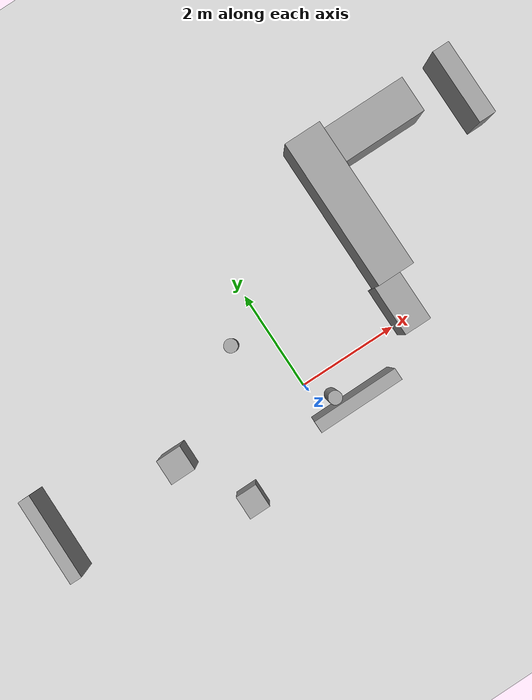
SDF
<sdf version="1.6">
 <world name="default">
  <model name="ground_plane">
   <static>1</static>
   <link name="link">
    <collision name="collision">
     <geometry><plane><normal>0 0 1</normal><size>100 100</size></plane></geometry>
     <surface><friction><ode><mu>100</mu><mu2>50</mu2></ode></friction></surface>
    </collision>
    <visual name="visual">
     <cast_shadows>0</cast_shadows>
     <geometry><plane><normal>0 0 1</normal><size>100 100</size></plane></geometry>
     <material>
      <script><uri>file://media/materials/scripts/gazebo.material</uri><name>Gazebo/Grey</name></script>
     </material>
    </visual>
   </link>
  </model>
  <model name="cma_armario">
   <link name="link_0">
    <pose>1.32157 0.885178 0.5 0 -0 0</pose>
    <inertial>
     <mass>0.402376</mass>
     <inertia>
      <ixx>0.0353686</ixx>
      <ixy>0</ixy>
      <ixz>0</ixz>
      <iyy>0.132616</iyy>
      <iyz>0</iyz>
      <izz>0.100922</izz>
     </inertia>
    </inertial>
    <visual name="visual">
     <geometry><box><size>1.71877 0.234069 1</size></box></geometry>
     <material>
      <lighting>1</lighting>
      <script><uri>file://media/materials/scripts/gazebo.material</uri><name>Gazebo/Grey</name></script>
      <ambient>0.3 0.3 0.3 1</ambient>
      <diffuse>0.7 0.7 0.7 1</diffuse>
      <specular>0.01 0.01 0.01 1</specular>
      <emissive>0 0 0 1</emissive>
     </material>
    </visual>
    <collision name="collision">
     <geometry><box><size>1.71877 0.234069 1</size></box></geometry>
     <surface>
      <friction>
       <ode><mu>1</mu><mu2>1</mu2><fdir1>0 0 0</fdir1><slip1>0</slip1><slip2>0</slip2></ode>
       <torsional>
        <coefficient>1</coefficient>
        <patch_radius>0</patch_radius>
        <surface_radius>0</surface_radius>
        <use_patch_radius>1</use_patch_radius>
        <ode><slip>0</slip></ode>
       </torsional>
      </friction>
      <bounce><restitution_coefficient>0</restitution_coefficient><threshold>1e+06</threshold></bounce>
      <contact>
       <collide_without_contact>0</collide_without_contact>
       <collide_without_contact_bitmask>1</collide_without_contact_bitmask>
       <collide_bitmask>1</collide_bitmask>
       <ode>
        <soft_cfm>0</soft_cfm>
        <soft_erp>0.2</soft_erp>
        <kp>1e+13</kp>
        <kd>1</kd>
        <max_vel>0.01</max_vel>
        <min_depth>0</min_depth>
       </ode>
       <bullet>
        <split_impulse>1</split_impulse>
        <split_impulse_penetration_threshold>-0.01</split_impulse_penetration_threshold>
        <soft_cfm>0</soft_cfm>
        <soft_erp>0.2</soft_erp>
        <kp>1e+13</kp>
        <kd>1</kd>
       </bullet>
      </contact>
     </surface>
    </collision>
   </link>
   <static>0</static>
   <pose>-0.669335 -1.58272 0 0 -0 0.001296</pose>
  </model>
  <model name="cma_lixo">
   <link name="link_1">
    <pose>0.882962 1.81586 0.5 0 -0 0</pose>
    <inertial>
     <mass>0.0687644</mass>
     <inertia>
      <ixx>0.00602588</ixx>
      <ixy>0</ixy>
      <ixz>0</ixz>
      <iyy>0.00602588</iyy>
      <iyz>0</iyz>
      <izz>0.000591068</izz>
     </inertia>
    </inertial>
    <visual name="visual">
     <geometry><cylinder><radius>0.131112</radius><length>1</length></cylinder></geometry>
     <material>
      <lighting>1</lighting>
      <script><uri>file://media/materials/scripts/gazebo.material</uri><name>Gazebo/Grey</name></script>
      <ambient>0.3 0.3 0.3 1</ambient>
      <diffuse>0.7 0.7 0.7 1</diffuse>
      <specular>0.01 0.01 0.01 1</specular>
      <emissive>0 0 0 1</emissive>
     </material>
    </visual>
    <collision name="collision">
     <geometry><cylinder><radius>0.131112</radius><length>1</length></cylinder></geometry>
     <surface>
      <friction>
       <ode><mu>1</mu><mu2>1</mu2><fdir1>0 0 0</fdir1><slip1>0</slip1><slip2>0</slip2></ode>
       <torsional>
        <coefficient>1</coefficient>
        <patch_radius>0</patch_radius>
        <surface_radius>0</surface_radius>
        <use_patch_radius>1</use_patch_radius>
        <ode><slip>0</slip></ode>
       </torsional>
      </friction>
      <bounce><restitution_coefficient>0</restitution_coefficient><threshold>1e+06</threshold></bounce>
      <contact>
       <collide_without_contact>0</collide_without_contact>
       <collide_without_contact_bitmask>1</collide_without_contact_bitmask>
       <collide_bitmask>1</collide_bitmask>
       <ode>
        <soft_cfm>0</soft_cfm>
        <soft_erp>0.2</soft_erp>
        <kp>1e+13</kp>
        <kd>1</kd>
        <max_vel>0.01</max_vel>
        <min_depth>0</min_depth>
       </ode>
       <bullet>
        <split_impulse>1</split_impulse>
        <split_impulse_penetration_threshold>-0.01</split_impulse_penetration_threshold>
        <soft_cfm>0</soft_cfm>
        <soft_erp>0.2</soft_erp>
        <kp>1e+13</kp>
        <kd>1</kd>
       </bullet>
      </contact>
     </surface>
    </collision>
   </link>
   <static>0</static>
   <pose>-1.35785 -1.52544 -5e-06 0 0 -0.543097</pose>
  </model>
  <model name="cma_lixo_0">
   <link name="link_1">
    <pose>0.882962 1.81586 0.5 0 -0 0</pose>
    <inertial>
     <mass>0.0687644</mass>
     <inertia>
      <ixx>0.00602588</ixx>
      <ixy>0</ixy>
      <ixz>0</ixz>
      <iyy>0.00602588</iyy>
      <iyz>0</iyz>
      <izz>0.000591068</izz>
     </inertia>
    </inertial>
    <visual name="visual">
     <geometry><cylinder><radius>0.131112</radius><length>1</length></cylinder></geometry>
     <material>
      <lighting>1</lighting>
      <script><uri>file://media/materials/scripts/gazebo.material</uri><name>Gazebo/Grey</name></script>
      <ambient>0.3 0.3 0.3 1</ambient>
      <diffuse>0.7 0.7 0.7 1</diffuse>
      <specular>0.01 0.01 0.01 1</specular>
      <emissive>0 0 0 1</emissive>
     </material>
    </visual>
    <collision name="collision">
     <geometry><cylinder><radius>0.131112</radius><length>1</length></cylinder></geometry>
     <surface>
      <friction>
       <ode><mu>1</mu><mu2>1</mu2><fdir1>0 0 0</fdir1><slip1>0</slip1><slip2>0</slip2></ode>
       <torsional>
        <coefficient>1</coefficient>
        <patch_radius>0</patch_radius>
        <surface_radius>0</surface_radius>
        <use_patch_radius>1</use_patch_radius>
        <ode><slip>0</slip></ode>
       </torsional>
      </friction>
      <bounce><restitution_coefficient>0</restitution_coefficient><threshold>1e+06</threshold></bounce>
      <contact>
       <collide_without_contact>0</collide_without_contact>
       <collide_without_contact_bitmask>1</collide_without_contact_bitmask>
       <collide_bitmask>1</collide_bitmask>
       <ode>
        <soft_cfm>0</soft_cfm>
        <soft_erp>0.2</soft_erp>
        <kp>1e+13</kp>
        <kd>1</kd>
        <max_vel>0.01</max_vel>
        <min_depth>0</min_depth>
       </ode>
       <bullet>
        <split_impulse>1</split_impulse>
        <split_impulse_penetration_threshold>-0.01</split_impulse_penetration_threshold>
        <soft_cfm>0</soft_cfm>
        <soft_erp>0.2</soft_erp>
        <kp>1e+13</kp>
        <kd>1</kd>
       </bullet>
      </contact>
     </surface>
    </collision>
   </link>
   <static>0</static>
   <pose>-1.60935 -0.442731 -1e-06 0 0 -0.009777</pose>
  </model>
  <model name="cma_bau_s">
   <link name="link_1">
    <pose>0.109594 0.272293 0 0 -0 0</pose>
    <inertial>
     <mass>0.125479</mass>
     <inertia>
      <ixx>0.00641943</ixx>
      <ixy>0</ixy>
      <ixz>0</ixz>
      <iyy>0.0059754</iyy>
      <iyz>0</iyz>
      <izz>0.00422085</izz>
     </inertia>
    </inertial>
    <visual name="visual">
     <geometry><box><size>0.424964 0.472283 0.625118</size></box></geometry>
     <material>
      <lighting>1</lighting>
      <script><uri>file://media/materials/scripts/gazebo.material</uri><name>Gazebo/Grey</name></script>
      <ambient>0.3 0.3 0.3 1</ambient>
      <diffuse>0.7 0.7 0.7 1</diffuse>
      <specular>0.01 0.01 0.01 1</specular>
      <emissive>0 0 0 1</emissive>
     </material>
    </visual>
    <collision name="collision">
     <geometry><box><size>0.424964 0.472283 0.625118</size></box></geometry>
     <surface>
      <friction>
       <ode><mu>1</mu><mu2>1</mu2><fdir1>0 0 0</fdir1><slip1>0</slip1><slip2>0</slip2></ode>
       <torsional>
        <coefficient>1</coefficient>
        <patch_radius>0</patch_radius>
        <surface_radius>0</surface_radius>
        <use_patch_radius>1</use_patch_radius>
        <ode><slip>0</slip></ode>
       </torsional>
      </friction>
      <bounce><restitution_coefficient>0</restitution_coefficient><threshold>1e+06</threshold></bounce>
      <contact>
       <collide_without_contact>0</collide_without_contact>
       <collide_without_contact_bitmask>1</collide_without_contact_bitmask>
       <collide_bitmask>1</collide_bitmask>
       <ode>
        <soft_cfm>0</soft_cfm>
        <soft_erp>0.2</soft_erp>
        <kp>1e+13</kp>
        <kd>1</kd>
        <max_vel>0.01</max_vel>
        <min_depth>0</min_depth>
       </ode>
       <bullet>
        <split_impulse>1</split_impulse>
        <split_impulse_penetration_threshold>-0.01</split_impulse_penetration_threshold>
        <soft_cfm>0</soft_cfm>
        <soft_erp>0.2</soft_erp>
        <kp>1e+13</kp>
        <kd>1</kd>
       </bullet>
      </contact>
     </surface>
    </collision>
   </link>
   <static>0</static>
   <pose>-2.04294 -1.48569 0.312553 1.3e-05 -3e-06 0.000133</pose>
  </model>
  <model name="cma_gaveteiro_1">
   <link name="link_0">
    <pose>-0 4e-06 0 0 -0 0</pose>
    <inertial>
     <mass>0.245086</mass>
     <inertia>
      <ixx>0.025418</ixx>
      <ixy>0</ixy>
      <ixz>0</ixz>
      <iyy>0.0254411</iyy>
      <iyz>0</iyz>
      <izz>0.0100113</izz>
     </inertia>
    </inertial>
    <visual name="visual">
     <geometry><box><size>0.495657 0.494491 1</size></box></geometry>
     <material>
      <lighting>1</lighting>
      <script><uri>file://media/materials/scripts/gazebo.material</uri><name>Gazebo/Grey</name></script>
      <ambient>0.3 0.3 0.3 1</ambient>
      <diffuse>0.7 0.7 0.7 1</diffuse>
      <specular>0.01 0.01 0.01 1</specular>
      <emissive>0 0 0 1</emissive>
     </material>
    </visual>
    <collision name="collision">
     <geometry><box><size>0.495657 0.494491 1</size></box></geometry>
     <surface>
      <friction>
       <ode><mu>1</mu><mu2>1</mu2><fdir1>0 0 0</fdir1><slip1>0</slip1><slip2>0</slip2></ode>
       <torsional>
        <coefficient>1</coefficient>
        <patch_radius>0</patch_radius>
        <surface_radius>0</surface_radius>
        <use_patch_radius>1</use_patch_radius>
        <ode><slip>0</slip></ode>
       </torsional>
      </friction>
      <bounce><restitution_coefficient>0</restitution_coefficient><threshold>1e+06</threshold></bounce>
      <contact>
       <collide_without_contact>0</collide_without_contact>
       <collide_without_contact_bitmask>1</collide_without_contact_bitmask>
       <collide_bitmask>1</collide_bitmask>
       <ode>
        <soft_cfm>0</soft_cfm>
        <soft_erp>0.2</soft_erp>
        <kp>1e+13</kp>
        <kd>1</kd>
        <max_vel>0.01</max_vel>
        <min_depth>0</min_depth>
       </ode>
       <bullet>
        <split_impulse>1</split_impulse>
        <split_impulse_penetration_threshold>-0.01</split_impulse_penetration_threshold>
        <soft_cfm>0</soft_cfm>
        <soft_erp>0.2</soft_erp>
        <kp>1e+13</kp>
        <kd>1</kd>
       </bullet>
      </contact>
     </surface>
    </collision>
   </link>
   <static>0</static>
   <pose>-2.68859 0.131625 0.500001 1e-06 -1e-06 -0.000152</pose>
  </model>
  <model name="cma_armario_7">
   <link name="link_0">
    <pose>1.32157 0.885178 0.5 0 -0 0</pose>
    <inertial>
     <mass>0.402376</mass>
     <inertia>
      <ixx>0.0353686</ixx>
      <ixy>0</ixy>
      <ixz>0</ixz>
      <iyy>0.132616</iyy>
      <iyz>0</iyz>
      <izz>0.100922</izz>
     </inertia>
    </inertial>
    <visual name="visual">
     <geometry><box><size>1.71877 0.234069 1</size></box></geometry>
     <material>
      <lighting>1</lighting>
      <script><uri>file://media/materials/scripts/gazebo.material</uri><name>Gazebo/Grey</name></script>
      <ambient>0.3 0.3 0.3 1</ambient>
      <diffuse>0.7 0.7 0.7 1</diffuse>
      <specular>0.01 0.01 0.01 1</specular>
      <emissive>0 0 0 1</emissive>
     </material>
    </visual>
    <collision name="collision">
     <geometry><box><size>1.71877 0.234069 1</size></box></geometry>
     <surface>
      <friction>
       <ode><mu>1</mu><mu2>1</mu2><fdir1>0 0 0</fdir1><slip1>0</slip1><slip2>0</slip2></ode>
       <torsional>
        <coefficient>1</coefficient>
        <patch_radius>0</patch_radius>
        <surface_radius>0</surface_radius>
        <use_patch_radius>1</use_patch_radius>
        <ode><slip>0</slip></ode>
       </torsional>
      </friction>
      <bounce><restitution_coefficient>0</restitution_coefficient><threshold>1e+06</threshold></bounce>
      <contact>
       <collide_without_contact>0</collide_without_contact>
       <collide_without_contact_bitmask>1</collide_without_contact_bitmask>
       <collide_bitmask>1</collide_bitmask>
       <ode>
        <soft_cfm>0</soft_cfm>
        <soft_erp>0.2</soft_erp>
        <kp>1e+13</kp>
        <kd>1</kd>
        <max_vel>0.01</max_vel>
        <min_depth>0</min_depth>
       </ode>
       <bullet>
        <split_impulse>1</split_impulse>
        <split_impulse_penetration_threshold>-0.01</split_impulse_penetration_threshold>
        <soft_cfm>0</soft_cfm>
        <soft_erp>0.2</soft_erp>
        <kp>1e+13</kp>
        <kd>1</kd>
       </bullet>
      </contact>
     </surface>
    </collision>
   </link>
   <static>0</static>
   <pose>-4.38573 -1.06551 0 0 -0 1.5687</pose>
  </model>
  <model name="cma_armario_coz_190x70cm">
   <link name="link_0">
    <pose>5.20958 2.97661 0.5 0 0 -1.57068</pose>
    <inertial>
     <mass>1.2966</mass>
     <inertia>
      <ixx>0.454477</ixx>
      <ixy>0</ixy>
      <ixz>0</ixz>
      <iyy>0.164706</iyy>
      <iyz>0</iyz>
      <izz>0.403084</izz>
     </inertia>
    </inertial>
    <visual name="visual">
     <geometry><box><size>0.724184 1.79058 1</size></box></geometry>
     <material>
      <lighting>1</lighting>
      <script><uri>file://media/materials/scripts/gazebo.material</uri><name>Gazebo/Grey</name></script>
      <ambient>0.3 0.3 0.3 1</ambient>
      <diffuse>0.7 0.7 0.7 1</diffuse>
      <specular>0.01 0.01 0.01 1</specular>
      <emissive>0 0 0 1</emissive>
     </material>
    </visual>
    <collision name="collision">
     <geometry><box><size>0.724184 1.79058 1</size></box></geometry>
     <surface>
      <friction>
       <ode><mu>1</mu><mu2>1</mu2><fdir1>0 0 0</fdir1><slip1>0</slip1><slip2>0</slip2></ode>
       <torsional>
        <coefficient>1</coefficient>
        <patch_radius>0</patch_radius>
        <surface_radius>0</surface_radius>
        <use_patch_radius>1</use_patch_radius>
        <ode><slip>0</slip></ode>
       </torsional>
      </friction>
      <bounce><restitution_coefficient>0</restitution_coefficient><threshold>1e+06</threshold></bounce>
      <contact>
       <collide_without_contact>0</collide_without_contact>
       <collide_without_contact_bitmask>1</collide_without_contact_bitmask>
       <collide_bitmask>1</collide_bitmask>
       <ode>
        <soft_cfm>0</soft_cfm>
        <soft_erp>0.2</soft_erp>
        <kp>1e+13</kp>
        <kd>1</kd>
        <max_vel>0.01</max_vel>
        <min_depth>0</min_depth>
       </ode>
       <bullet>
        <split_impulse>1</split_impulse>
        <split_impulse_penetration_threshold>-0.01</split_impulse_penetration_threshold>
        <soft_cfm>0</soft_cfm>
        <soft_erp>0.2</soft_erp>
        <kp>1e+13</kp>
        <kd>1</kd>
       </bullet>
      </contact>
     </surface>
    </collision>
   </link>
   <model name="cma_armario_coz_100x50cm">
    <link name="link_0">
     <pose>-3e-06 -3e-06 0 0 -0 0</pose>
     <inertial>
      <mass>0.536193</mass>
      <inertia>
       <ixx>0.0893657</ixx>
       <ixy>0</ixy>
       <ixz>0</ixz>
       <iyy>0.0575293</iyy>
       <iyz>0</iyz>
       <izz>0.0575293</izz>
      </inertia>
     </inertial>
     <visual name="visual">
      <geometry><box><size>0.536193 1 1</size></box></geometry>
      <material>
       <lighting>1</lighting>
       <script><uri>file://media/materials/scripts/gazebo.material</uri><name>Gazebo/Grey</name></script>
       <ambient>0.3 0.3 0.3 1</ambient>
       <diffuse>0.7 0.7 0.7 1</diffuse>
       <specular>0.01 0.01 0.01 1</specular>
       <emissive>0 0 0 1</emissive>
      </material>
     </visual>
     <collision name="collision">
      <geometry><box><size>0.536193 1 1</size></box></geometry>
      <surface>
       <friction>
        <ode><mu>1</mu><mu2>1</mu2><fdir1>0 0 0</fdir1><slip1>0</slip1><slip2>0</slip2></ode>
        <torsional>
         <coefficient>1</coefficient>
         <patch_radius>0</patch_radius>
         <surface_radius>0</surface_radius>
         <use_patch_radius>1</use_patch_radius>
         <ode><slip>0</slip></ode>
        </torsional>
       </friction>
       <bounce><restitution_coefficient>0</restitution_coefficient><threshold>1e+06</threshold></bounce>
       <contact>
        <collide_without_contact>0</collide_without_contact>
        <collide_without_contact_bitmask>1</collide_without_contact_bitmask>
        <collide_bitmask>1</collide_bitmask>
        <ode>
         <soft_cfm>0</soft_cfm>
         <soft_erp>0.2</soft_erp>
         <kp>1e+13</kp>
         <kd>1</kd>
         <max_vel>0.01</max_vel>
         <min_depth>0</min_depth>
        </ode>
        <bullet>
         <split_impulse>1</split_impulse>
         <split_impulse_penetration_threshold>-0.01</split_impulse_penetration_threshold>
         <soft_cfm>0</soft_cfm>
         <soft_erp>0.2</soft_erp>
         <kp>1e+13</kp>
         <kd>1</kd>
        </bullet>
       </contact>
      </surface>
     </collision>
    </link>
    <static>0</static>
    <pose>3.86455 -0.048915 0.5 0 -0 0</pose>
   </model>
   <model name="cma_armario_coz_300x70cm">
    <link name="link_0">
     <pose>3.26428 1.50856 0.5 0 -0 0</pose>
     <inertial>
      <mass>2.13833</mass>
      <inertia><ixx>1.732</ixx><ixy>0</ixy><ixz>0</ixz><iyy>0.271637</iyy><iyz>0</iyz><izz>1.64725</izz></inertia>
     </inertial>
     <visual name="visual">
      <geometry><box><size>0.724184 2.9529 1</size></box></geometry>
      <material>
       <lighting>1</lighting>
       <script><uri>file://media/materials/scripts/gazebo.material</uri><name>Gazebo/Grey</name></script>
       <ambient>0.3 0.3 0.3 1</ambient>
       <diffuse>0.7 0.7 0.7 1</diffuse>
       <specular>0.01 0.01 0.01 1</specular>
       <emissive>0 0 0 1</emissive>
      </material>
     </visual>
     <collision name="collision">
      <geometry><box><size>0.724184 2.9529 1</size></box></geometry>
      <surface>
       <friction>
        <ode><mu>1</mu><mu2>1</mu2><fdir1>0 0 0</fdir1><slip1>0</slip1><slip2>0</slip2></ode>
        <torsional>
         <coefficient>1</coefficient>
         <patch_radius>0</patch_radius>
         <surface_radius>0</surface_radius>
         <use_patch_radius>1</use_patch_radius>
         <ode><slip>0</slip></ode>
        </torsional>
       </friction>
       <bounce><restitution_coefficient>0</restitution_coefficient><threshold>1e+06</threshold></bounce>
       <contact>
        <collide_without_contact>0</collide_without_contact>
        <collide_without_contact_bitmask>1</collide_without_contact_bitmask>
        <collide_bitmask>1</collide_bitmask>
        <ode>
         <soft_cfm>0</soft_cfm>
         <soft_erp>0.2</soft_erp>
         <kp>1e+13</kp>
         <kd>1</kd>
         <max_vel>0.01</max_vel>
         <min_depth>0</min_depth>
        </ode>
        <bullet>
         <split_impulse>1</split_impulse>
         <split_impulse_penetration_threshold>-0.01</split_impulse_penetration_threshold>
         <soft_cfm>0</soft_cfm>
         <soft_erp>0.2</soft_erp>
         <kp>1e+13</kp>
         <kd>1</kd>
        </bullet>
       </contact>
      </surface>
     </collision>
    </link>
    <static>0</static>
    <pose>0.706289 0.418831 0.5 0 -0 0</pose>
   </model>
   <static>0</static>
   <pose>-1.5961 0.363887 0 0 -0 0</pose>
  </model>
  <model name="cma_armario_coz_150x20cm">
   <link name="link_1">
    <pose>7.18686 2.75247 0.5 0 -0 0</pose>
    <inertial>
     <mass>0.531573</mass>
     <inertia>
      <ixx>0.147651</ixx>
      <ixy>0</ixy>
      <ixz>0</ixz>
      <iyy>0.0496628</iyy>
      <iyz>0</iyz>
      <izz>0.108718</izz>
     </inertia>
    </inertial>
    <visual name="visual">
     <geometry><box><size>0.348023 1.52746 1</size></box></geometry>
     <material>
      <lighting>1</lighting>
      <script><uri>file://media/materials/scripts/gazebo.material</uri><name>Gazebo/Grey</name></script>
      <ambient>0.3 0.3 0.3 1</ambient>
      <diffuse>0.7 0.7 0.7 1</diffuse>
      <specular>0.01 0.01 0.01 1</specular>
      <emissive>0 0 0 1</emissive>
     </material>
    </visual>
    <collision name="collision">
     <geometry><box><size>0.348023 1.52746 1</size></box></geometry>
     <surface>
      <friction>
       <ode><mu>1</mu><mu2>1</mu2><fdir1>0 0 0</fdir1><slip1>0</slip1><slip2>0</slip2></ode>
       <torsional>
        <coefficient>1</coefficient>
        <patch_radius>0</patch_radius>
        <surface_radius>0</surface_radius>
        <use_patch_radius>1</use_patch_radius>
        <ode><slip>0</slip></ode>
       </torsional>
      </friction>
      <bounce><restitution_coefficient>0</restitution_coefficient><threshold>1e+06</threshold></bounce>
      <contact>
       <collide_without_contact>0</collide_without_contact>
       <collide_without_contact_bitmask>1</collide_without_contact_bitmask>
       <collide_bitmask>1</collide_bitmask>
       <ode>
        <soft_cfm>0</soft_cfm>
        <soft_erp>0.2</soft_erp>
        <kp>1e+13</kp>
        <kd>1</kd>
        <max_vel>0.01</max_vel>
        <min_depth>0</min_depth>
       </ode>
       <bullet>
        <split_impulse>1</split_impulse>
        <split_impulse_penetration_threshold>-0.01</split_impulse_penetration_threshold>
        <soft_cfm>0</soft_cfm>
        <soft_erp>0.2</soft_erp>
        <kp>1e+13</kp>
        <kd>1</kd>
       </bullet>
      </contact>
     </surface>
    </collision>
   </link>
   <static>0</static>
   <pose>-1.79432 0.264631 0 0 -0 0</pose>
  </model>
 </world>
</sdf>
